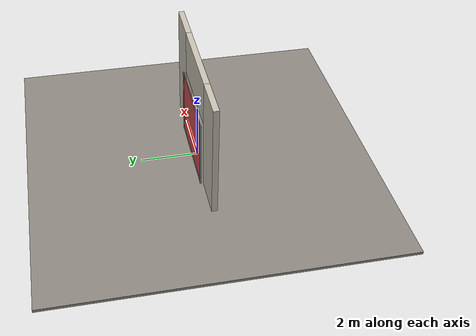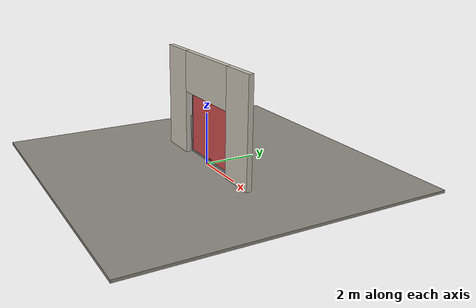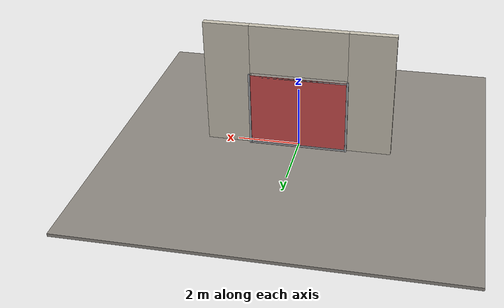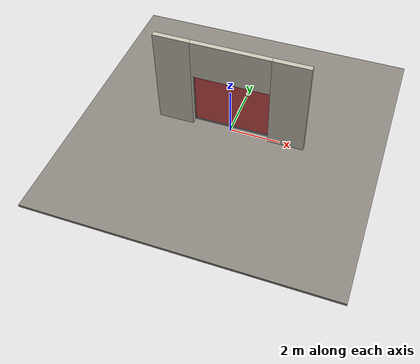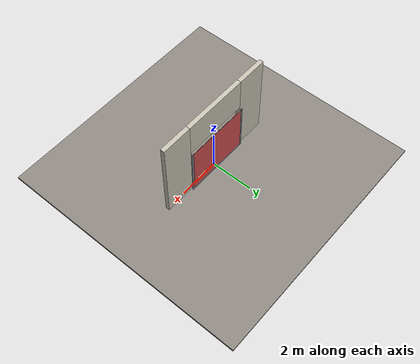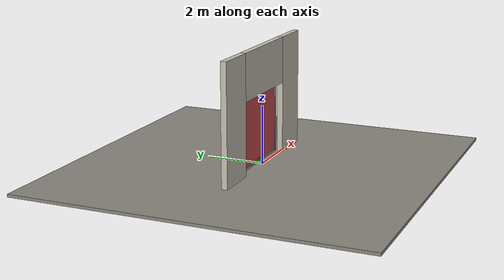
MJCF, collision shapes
<?xml version="1.0" ?>
<mujoco model="db0983_rollup_minimal">
  <compiler angle="radian" meshdir="../../hardware" texturedir="../../textures" autolimits="true" inertiafromgeom="false"/>
  <option timestep="0.002" integrator="implicitfast" cone="elliptic" impratio="10" noslip_iterations="3">
    <flag multiccd="enable"/>
  </option>
  <size memory="16M"/>
  <default>
    <geom condim="4" solref="0.005 1" solimp="0.95 0.99 0.001"/>
    <joint solreflimit="0.005 1" solimplimit="0.95 0.99 0.001"/>
    <tendon solreflimit="0.005 1"/>
    <equality solref="0.002 1"/>
  </default>
  <visual>
    <headlight ambient="0.4 0.4 0.4" diffuse="0.7 0.7 0.7" specular="0.2 0.2 0.2"/>
    <quality shadowsize="4096"/>
    <map znear="0.01" zfar="60"/>
  </visual>
  <asset>
    <mesh name="pull_bdc5e965ab" file="pull_bdc5e965ab.obj"/>
    <material name="mat_floor" rgba="0.55 0.53 0.5 1" specular="0.2" shininess="0.15" reflectance="0"/>
    <material name="mat_wall" rgba="0.78 0.76 0.7 1" specular="0.2" shininess="0.1" reflectance="0"/>
    <material name="mat_frame" rgba="0.45 0.48 0.52 1" specular="0.32" shininess="0.6" reflectance="0.08"/>
    <material name="mat_track" rgba="0.65 0.66 0.68 1" specular="0.74" shininess="0.5" reflectance="0.36"/>
    <material name="mat_curtain" rgba="0.8 0.81 0.83 1" specular="0.8" shininess="0.6" reflectance="0.4"/>
    <material name="mat_slat_line" rgba="0.25 0.25 0.25 1" specular="0.2" shininess="0.3" reflectance="0"/>
    <material name="mat_astragal" rgba="0.09 0.09 0.1 1" specular="0.2" shininess="0.1" reflectance="0"/>
    <material name="mat_op_black_matte_metal" rgba="0.05 0.05 0.05 1" specular="0.38" shininess="0.3" reflectance="0.12"/>
    <material name="mat_slidelock" rgba="0.65 0.66 0.68 1" specular="0.74" shininess="0.5" reflectance="0.36"/>
    <texture name="skybox" type="skybox" builtin="gradient" rgb1="0.6 0.7 0.85" rgb2="0.9 0.92 0.95" width="256" height="256"/>
  </asset>
  <worldbody>
    <light name="sun" pos="1.5 -2.5 4" dir="-0.3 0.5 -0.8" directional="true" diffuse="0.8 0.8 0.8" specular="0.3 0.3 0.3" castshadow="true"/>
    <light name="fill" pos="-1.5 2.5 3" dir="0.3 -0.5 -0.7" directional="true" diffuse="0.35 0.35 0.4" castshadow="false"/>
    <camera name="robot_view" pos="0 -3.53125 2.23375" xyaxes="1 0 0 0 0.26963 0.962964" fovy="52"/>
    <camera name="far_view" pos="0 3.53125 2.23375" xyaxes="-1 0 0 0 -0.26963 0.962964" fovy="52"/>
    <camera name="iso" pos="2.68375 -2.96625 2.79875" xyaxes="0.741536 0.670913 0 -0.242917 0.268487 0.932151" fovy="46"/>
    <camera name="detail_handle" pos="0.25 -0.97 0.51" xyaxes="0.975133 0.221621 0 -0.065674 0.288965 0.955084" fovy="38"/>
    <geom name="floor" type="box" size="6 6 0.05" pos="0 0 -0.05" material="mat_floor" group="0" contype="1" conaffinity="1" friction="0.8 0.005 0.0001" density="2400"/>
    <geom name="wall_left" type="box" size="0.725 0.1 2.045" pos="-2.275 0 2.045" material="mat_wall" group="0" contype="1" conaffinity="1" friction="0.6 0.005 0.0001" density="800"/>
    <geom name="wall_right" type="box" size="0.725 0.1 2.045" pos="2.275 0 2.045" material="mat_wall" group="0" contype="1" conaffinity="1" friction="0.6 0.005 0.0001" density="800"/>
    <geom name="wall_header" type="box" size="1.55 0.1 0.8" pos="0 0 3.29" material="mat_wall" group="0" contype="1" conaffinity="1" friction="0.6 0.005 0.0001" density="800"/>
    <geom name="guide_l" type="box" size="0.03 0.025 0.1425" pos="-1.56 0.185 0.1425" material="mat_track" group="0" contype="1" conaffinity="1" friction="0.6 0.005 0.0001" density="7850"/>
    <geom name="guide_l_upper" type="box" size="0.03 0.025 1.0875" pos="-1.56 0.185 1.4025" material="mat_track" group="0" contype="1" conaffinity="1" friction="0.6 0.005 0.0001" density="7850"/>
    <geom name="guide_r" type="box" size="0.03 0.025 1.245" pos="1.56 0.185 1.245" material="mat_track" group="0" contype="1" conaffinity="1" friction="0.6 0.005 0.0001" density="7850"/>
    <site name="approach_point" pos="0 -2 0" quat="1 0 0 0" size="0.05" rgba="0.2 0.9 0.2 0.5" group="4"/>
    <site name="goal_point" pos="0 2 0" quat="1 0 0 0" size="0.05" rgba="0.2 0.9 0.2 0.5" group="4"/>
    <site name="door_plane_center" pos="0 0 1.245" quat="1 0 0 0" size="0.02" rgba="0.2 0.9 0.2 0.5" group="4"/>
    <body name="curtain" pos="0 0 0">
      <inertial pos="0 0.184758 1.09586" mass="86.163604" quat="0 0 -0.706969 0.707244" diaginertia="50.094625273 66.452274356 116.541179462"/>
      <joint name="curtain_slide" type="slide" axis="0 0 1" limited="true" range="0 0.003" damping="6.315545" frictionloss="135.427326" stiffness="53.140791" springref="7.966667" armature="0.5"/>
      <geom name="curtain_slab_col" type="box" size="1.525 0.005 1.22" pos="0 0.185 1.23" material="mat_curtain" group="3" contype="1" conaffinity="1" rgba="0.8 0.3 0.3 0.25" friction="0.35 0.005 0.0001" density="1"/>
      <geom name="curtain_rail_b" type="box" size="1.525 0.005 0.0225" pos="0 0.185 0.0325" material="mat_curtain" group="1" contype="0" conaffinity="0" density="1"/>
      <geom name="curtain_rail_t" type="box" size="1.525 0.005 0.0225" pos="0 0.185 2.4275" material="mat_curtain" group="1" contype="0" conaffinity="0" density="1"/>
      <geom name="curtain_stile_h" type="box" size="0.0225 0.005 1.22" pos="-1.5025 0.185 1.23" material="mat_curtain" group="1" contype="0" conaffinity="0" density="1"/>
      <geom name="curtain_stile_l" type="box" size="0.0225 0.005 1.22" pos="1.5025 0.185 1.23" material="mat_curtain" group="1" contype="0" conaffinity="0" density="1"/>
      <geom name="bottom_bar" type="box" size="1.525 0.02 0.03" pos="0 0.185 0.042" material="mat_track" group="0" contype="1" conaffinity="1" friction="0.6 0.005 0.0001" density="7850"/>
      <geom name="bottom_astragal" type="box" size="1.525 0.015 0.006" pos="0 0.185 0.006" material="mat_astragal" group="0" contype="1" conaffinity="1" friction="0.6 0.005 0.0001" density="1100"/>
      <geom name="lift_handle_n" type="mesh" mesh="pull_bdc5e965ab" pos="0 0.18 0.16" quat="0.707107 0.707107 0 0" material="mat_op_black_matte_metal" group="1" contype="0" conaffinity="0" density="3000"/>
      <geom name="lift_handle_col_n" type="box" size="0.1 0.006 0.015" pos="0 0.13 0.16" material="mat_op_black_matte_metal" group="3" contype="1" conaffinity="1" rgba="0.8 0.3 0.3 0.25" friction="0.6 0.005 0.0001" density="3000"/>
      <site name="lift_handle_grip_n" pos="0 0.13 0.16" quat="1 0 0 0" size="0.012" rgba="0.2 0.9 0.2 0.5" group="4"/>
    </body>
  </worldbody>
  <sensor>
    <jointpos name="curtain_slide_pos" joint="curtain_slide"/>
    <jointvel name="curtain_slide_vel" joint="curtain_slide"/>
  </sensor>
</mujoco>
